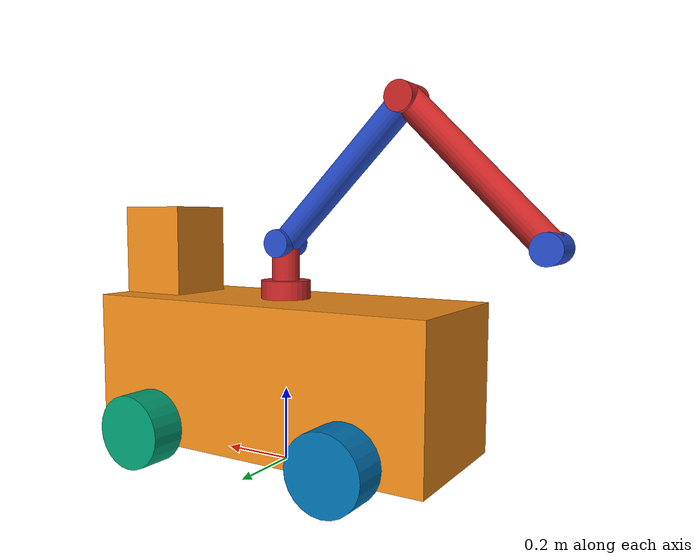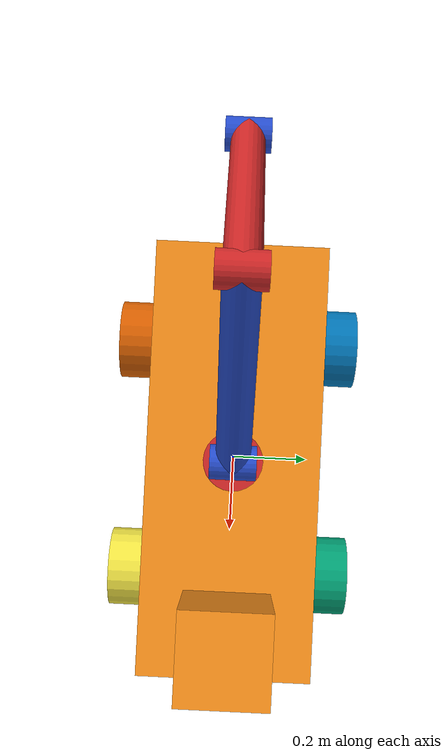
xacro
<?xml version="1.0" ?>

<robot name="mobile_manipulator_robot" xmlns:xacro="http://ros.org/wiki/xacro">
    <xacro:include filename="$(find garbage_collector_boat)/urdf/common_macros.xacro" />
    <xacro:include filename="$(find garbage_collector_boat)/urdf/robot_control.gazebo.xacro" />

    <gazebo>
        <static>false</static>
    </gazebo>

    <xacro:property name="density_pla" value="600" />

    <!-- MOBILE PLATFORM -->

    <link name="base_footprint"/>

    <joint name="base_joint" type="fixed">
        <parent link="base_footprint"/>
        <child link="mobile_base_link" />
        <origin xyz="0 0 0.15" rpy="0 0 0"/>
    </joint>

    <!-- MOBILE BASE -->

    <link name="mobile_base_link">
        <visual>
            <origin xyz="0 0 0.1" rpy="0 0 0"/>
            <geometry>
                <box size="1 0.400 0.400" />
            </geometry>
        </visual>
        <visual>
            <origin xyz="0.4 0 0.4" rpy="0 0 0"/>
            <geometry>
                <box size="0.2 0.2 0.3" />
            </geometry>
        </visual>
        <collision>
            <origin xyz="0 0 0" rpy="0 0 0"/>
            <geometry>
                <box size="0.650 0.400 0.200"/>
            </geometry>
        </collision>
        <xacro:inertial_box length="0.650" width="0.400" height="0.200" density="${density_pla}">
            <origin xyz="0 0 0" rpy="0 0 0"/>
        </xacro:inertial_box>
    </link>

    <gazebo reference="mobile_base_link">
        <material>Gazebo/Orange</material>
    </gazebo>

    <!-- FRONT LEFT WHEEL -->
    <joint type="continuous" name="front_left_wheel_joint">
        <origin xyz="0.300 0.255 -0.050" rpy="-${pi/2} 0 0"/>
        <child link="front_left_wheel_link"/>
        <parent link="mobile_base_link"/>
        <axis xyz="0 0 1" rpy="0 0 0"/>
        <limit effort="1000" velocity="1000"/>
        <dynamics damping="0.7" friction="1.0"/>
    </joint>

    <link name="front_left_wheel_link">
        <visual>
            <origin xyz="0 0 0" rpy="0 0 0"/>
            <geometry>
                <cylinder length="0.1" radius="0.1" />
            </geometry>
        </visual>
        <collision>
            <origin xyz="0 0 0" rpy="0 0 0"/>
            <geometry>
                <cylinder length="0.1" radius="0.1" />
            </geometry>
        </collision>
        <xacro:inertial_cylinder radius="0.1" length="0.1" density="${density_pla}">
            <origin xyz="0 0 0" rpy="0 0 0"/>
        </xacro:inertial_cylinder>
    </link>

    <!-- FRONT RIGHT WHEEL -->
    <joint type="continuous" name="front_right_wheel_joint">
        <origin xyz="0.300 -0.255 -0.050" rpy="-${pi/2} 0 0"/>
        <child link="front_right_wheel_link"/>
        <parent link="mobile_base_link"/>
        <axis xyz="0 0 1" rpy="0 0 0"/>
        <limit effort="1000" velocity="1000"/>
        <dynamics damping="0.7" friction="1.0"/>
    </joint>

    <link name="front_right_wheel_link">
        <visual>
            <origin xyz="0 0 0" rpy="0 0 0"/>
            <geometry>
                <cylinder length="0.1" radius="0.1" />
            </geometry>
        </visual>
        <collision>
            <origin xyz="0 0 0" rpy="0 0 0"/>
            <geometry>
                <cylinder length="0.1" radius="0.1" />
            </geometry>
        </collision>
        <xacro:inertial_cylinder radius="0.1" length="0.1" density="${density_pla}">
            <origin xyz="0 0 0" rpy="0 0 0"/>
        </xacro:inertial_cylinder>
    </link>
        <!-- Back LEFT WHEEL -->
    <joint type="continuous" name="back_left_wheel_joint">
        <origin xyz="-0.300 0.255 -0.050" rpy="-${pi/2} 0 0"/>
        <child link="back_left_wheel_link"/>
        <parent link="mobile_base_link"/>
        <axis xyz="0 0 1" rpy="0 0 0"/>
        <limit effort="1000" velocity="1000"/>
        <dynamics damping="0.7" friction="1.0"/>
    </joint>

    <link name="back_left_wheel_link">
        <visual>
            <origin xyz="0 0 0" rpy="0 0 0"/>
            <geometry>
                <cylinder length="0.1" radius="0.1" />
            </geometry>
        </visual>
        <collision>
            <origin xyz="0 0 0" rpy="0 0 0"/>
            <geometry>
                <cylinder length="0.1" radius="0.1" />
            </geometry>
        </collision>
        <xacro:inertial_cylinder radius="0.1" length="0.1" density="${density_pla}">
            <origin xyz="0 0 0" rpy="0 0 0"/>
        </xacro:inertial_cylinder>
    </link>
    <!-- Back RIGHT WHEEL -->
    <joint type="continuous" name="back_right_wheel_joint">
        <origin xyz="-0.300 -0.255 -0.050" rpy="-${pi/2} 0 0"/>
        <child link="back_right_wheel_link"/>
        <parent link="mobile_base_link"/>
        <axis xyz="0 0 1" rpy="0 0 0"/>
        <limit effort="1000" velocity="1000"/>
        <dynamics damping="0.7" friction="1.0"/>
    </joint>

    <link name="back_right_wheel_link">
        <visual>
            <origin xyz="0 0 0" rpy="0 0 0"/>
            <geometry>
                <cylinder length="0.1" radius="0.1" />
            </geometry>
        </visual>
        <collision>
            <origin xyz="0 0 0" rpy="0 0 0"/>
            <geometry>
                <cylinder length="0.1" radius="0.1" />
            </geometry>
        </collision>
        <xacro:inertial_cylinder radius="0.1" length="0.1" density="${density_pla}">
            <origin xyz="0 0 0" rpy="0 0 0"/>
        </xacro:inertial_cylinder>
    </link>

    <!-- ROBOTIC ARM -->

    <!-- ARM BASE -->
    <joint type="revolute" name="arm_base_joint">
        <origin xyz="0 0 0.3" rpy="0 0 0"/>
        <child link="arm_base_link"/>
        <parent link="mobile_base_link"/>
        <axis xyz="0 0 1" rpy="0 0 0"/>
        <limit effort="100" velocity="100" lower="-${pi}" upper="${pi}"/>
        <dynamics damping="0.7" friction="1.0"/>
    </joint>

    <link name="arm_base_link">
        <visual>
            <origin xyz="0 0 0" rpy="0 0 0"/>
            <geometry>
                <cylinder length="0.1" radius="${0.135/2}"/>
            </geometry>
        </visual>
        <visual>
            <origin xyz="0 0 0.1" rpy="0 0 0"/>
            <geometry>
                <cylinder length="0.1" radius="${0.075/2}"/>
            </geometry>
        </visual>
        <collision>
            <origin xyz="0 0 0.05" rpy="0 0 0"/>
            <geometry>
                <cylinder length="0.1" radius="${0.135/2}" />
            </geometry>
        </collision>
        <collision>
            <origin xyz="0 0 0.15" rpy="0 0 0"/>
            <geometry>
                <box size="0.075 0.075 0.1"/>
            </geometry>
        </collision>
        <xacro:inertial_cylinder radius="${0.135/2}" length="0.2" density="${density_pla}">
            <origin xyz="0 0 0.1" rpy="0 0 0"/>
        </xacro:inertial_cylinder>
    </link>

    <gazebo reference="arm_base_link">
        <material>Gazebo/Red</material>
    </gazebo>
    <!-- LINK 1 -->
    <joint type="revolute" name="link_1_joint">
        <origin xyz="0 0 0.15" rpy="-${pi/2} -${pi/4} 0"/>
        <child link="link_1_link"/>
        <parent link="arm_base_link"/>
        <axis xyz="0 0 1" rpy="0 0 0"/>
        <limit effort="100" velocity="100" lower="-${pi/2}" upper="${pi/2}"/>
        <dynamics damping="0.7" friction="1.0"/>
    </joint>

    <link name="link_1_link">
         <visual>
            <origin xyz="0 0 0" rpy="0 0 0"/>
            <geometry>
                <cylinder length="0.1" radius="${0.075/2}"/>
            </geometry>
        </visual>
        <visual>
            <origin xyz="0 -${(0.5/2)} 0" rpy="${pi/2} 0 0"/>
            <geometry>
                <cylinder length="0.5" radius="${0.075/2}"/>
            </geometry>
        </visual>
        <collision>
            <origin xyz="0 0 0" rpy="0 0 0"/>
            <geometry>
                <cylinder length="0.135" radius="${0.075/2}" />
            </geometry>
        </collision>
        <collision>
            <origin xyz="0 -${0.385/2} 0" rpy="${pi/2} 0 0"/>
            <geometry>
                <cylinder length="0.305" radius="${0.075/2}" />
            </geometry>
        </collision>
        <collision>
            <origin xyz="0 -${0.385} 0" rpy="0 0 0"/>
            <geometry>
                <cylinder length="0.135" radius="${0.075/2}" />
            </geometry>
        </collision>
        <xacro:inertial_cylinder radius="${0.075/2}" length="0.305" density="${density_pla}">
            <origin xyz="0 -${0.385/2} 0.0" rpy="${pi/2} 0 0"/>
        </xacro:inertial_cylinder>
    </link>

    <gazebo reference="link_1_link">
        <material>Gazebo/Blue</material>
    </gazebo>

    <!-- LINK 2 -->
    <joint type="revolute" name="link_2_joint">
        <origin xyz="0 -0.50 0" rpy="0 0 -${pi/2}"/>
        <child link="link_2_link"/>
        <parent link="link_1_link"/>
        <axis xyz="0 0 1" rpy="0 0 0"/>
        <limit effort="100" velocity="100" lower="-${pi/2}" upper="${pi/2}"/>
        <dynamics damping="0.7" friction="1.0"/>
    </joint>

    <link name="link_2_link">
         <visual>
            <origin xyz="0 0 0" rpy="0 0 0"/>
            <geometry>
                <cylinder length="0.1" radius="${0.075/2}"/>
            </geometry>
        </visual>
        <visual>
            <origin xyz="0 -${(0.5/2)} 0" rpy="${pi/2} 0 0"/>
            <geometry>
                <cylinder length="0.5" radius="${0.075/2}"/>
            </geometry>
        </visual>
        <collision>
            <origin xyz="0 0 0" rpy="0 0 0"/>
            <geometry>
                <cylinder length="0.135" radius="${0.075/2}" />
            </geometry>
        </collision>
        <collision>
            <origin xyz="0 -${0.385/2} 0" rpy="${pi/2} 0 0"/>
            <geometry>
                <cylinder length="0.305" radius="${0.075/2}" />
            </geometry>
        </collision>
        <collision>
            <origin xyz="0 -${0.385} 0" rpy="0 0 0"/>
            <geometry>
                <cylinder length="0.135" radius="${0.075/2}" />
            </geometry>
        </collision>
        <xacro:inertial_cylinder radius="${0.075/2}" length="0.305" density="${density_pla}">
            <origin xyz="0 -${0.385/2} 0.0" rpy="${pi/2} 0 0"/>
        </xacro:inertial_cylinder>
    </link>

    <gazebo reference="link_2_link">
        <material>Gazebo/Red</material>
    </gazebo>

    <!-- LINK 3 -->
    <joint type="revolute" name="link_3_joint">
        <origin xyz="0 -0.50 0" rpy="0 0 -${pi/2}"/>
        <child link="link_3_link"/>
        <parent link="link_2_link"/>
        <axis xyz="0 0 1" rpy="0 0 0"/>
        <limit effort="100" velocity="100" lower="-${pi/2}" upper="${pi/2}"/>
        <dynamics damping="0.7" friction="1.0"/>
    </joint>

    <link name="link_3_link">
         <visual>
            <origin xyz="0 0 0.0" rpy="0 0 0"/>
            <geometry>
                <cylinder length="0.1" radius="${0.075/2}"/>
            </geometry>
        </visual>

        <collision>
            <origin xyz="0 0 0" rpy="0 0 0"/>
            <geometry>
                <cylinder length="0.135" radius="${0.075/2}" />
            </geometry>
        </collision>
        <collision>
            <origin xyz="0 -${0.385/2} 0" rpy="${pi/2} 0 0"/>
            <geometry>
                <cylinder length="0.305" radius="${0.075/2}" />
            </geometry>
        </collision>
        <collision>
            <origin xyz="0 -${0.385} 0" rpy="0 0 0"/>
            <geometry>
                <cylinder length="0.135" radius="${0.075/2}" />
            </geometry>
        </collision>
        <xacro:inertial_cylinder radius="${0.075/2}" length="0.305" density="${density_pla}">
            <origin xyz="0 -${0.385/2} 0.0" rpy="${pi/2} 0 0"/>
        </xacro:inertial_cylinder>
    </link>

    <gazebo reference="link_3_link">
        <material>Gazebo/Blue</material>
    </gazebo>

</robot>
